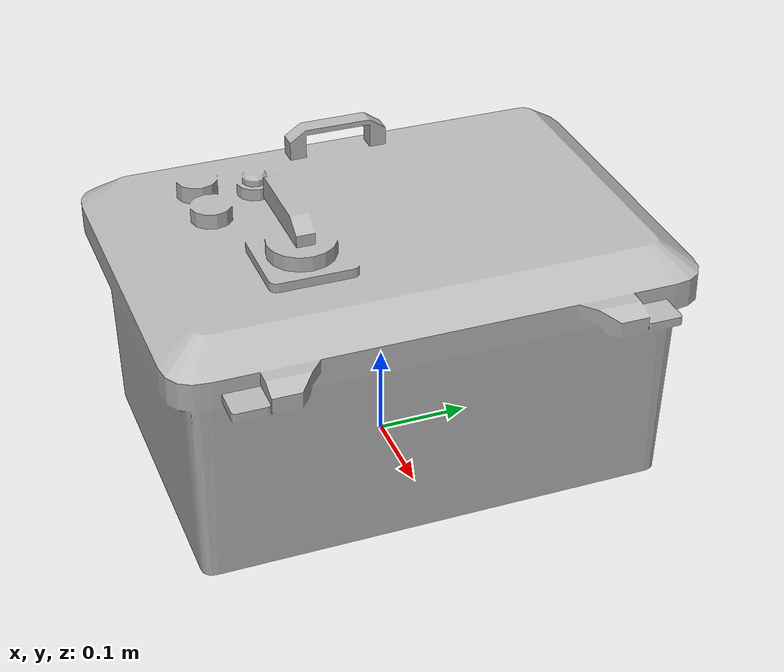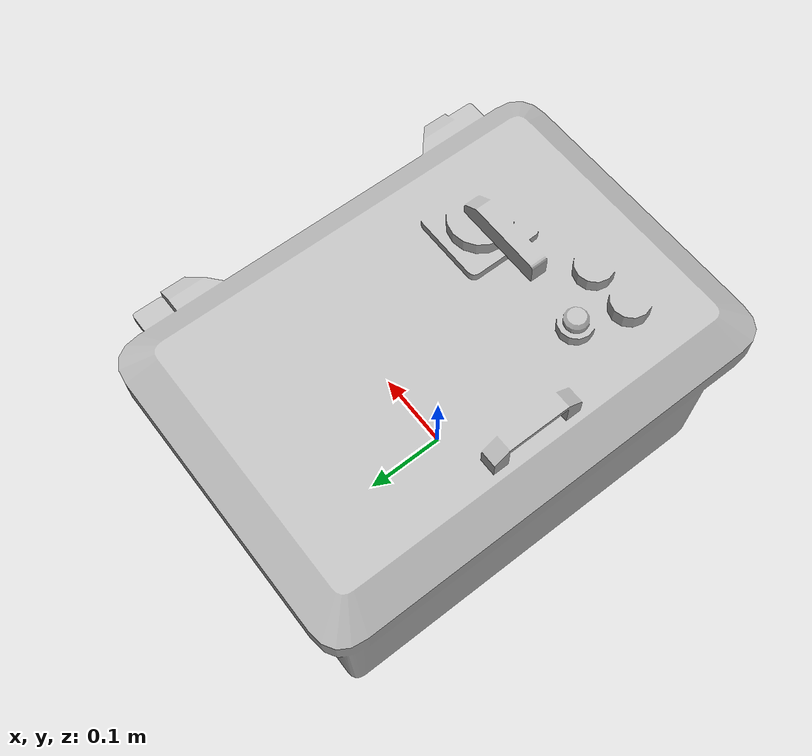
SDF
<?xml version='1.0' ?>
<sdf version="1.6">
    <model name="Electrical Box">
        <static>true</static>
        <link name="link">
            <pose>0 0 0 1.57 3.14159 0</pose>
            <collision name="collision">
                <geometry>
                    <mesh>
                        <uri>meshes/Electrical Box.dae</uri>
                    </mesh>
                </geometry>
            </collision>
            <visual name="visual">
                <geometry>
                    <mesh>
                        <uri>meshes/Electrical Box.dae</uri>
                    </mesh>
                </geometry>
            </visual>
        </link>
    </model>
</sdf>
